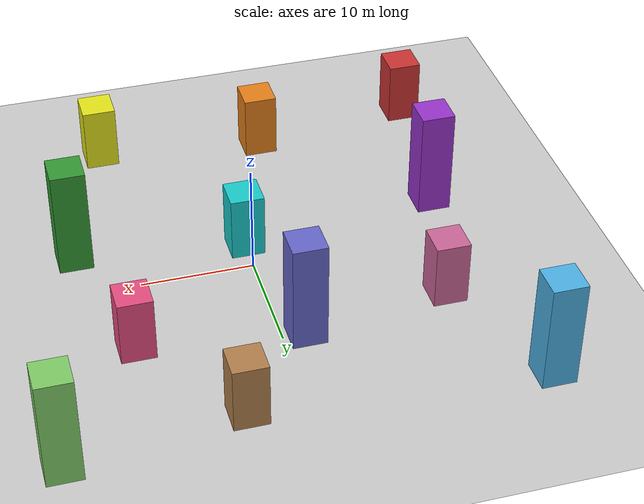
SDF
<?xml version="1.0"?>
<sdf version="1.6">
  <world name="curriculum_stage2_obstacles">

    <physics type="ode">
      <ode>
        <solver>
          <type>quick</type>
          <iters>50</iters>
          <sor>1.3</sor>
        </solver>
        <constraints>
          <cfm>0.0</cfm>
          <erp>0.2</erp>
          <contact_max_correcting_vel>100</contact_max_correcting_vel>
          <contact_surface_layer>0.001</contact_surface_layer>
        </constraints>
      </ode>
      <real_time_update_rate>250</real_time_update_rate>
      <max_step_size>0.004</max_step_size>
      <!-- Light wind for stability training -->
      <wind>
        <linear_velocity>0.5 0.3 0</linear_velocity>
      </wind>
    </physics>

    <!-- Enable wind globally -->
    <wind>
      <linear_velocity>0.5 0.3 0</linear_velocity>
    </wind>

    <light name="sun" type="directional">
      <cast_shadows>false</cast_shadows>
      <pose>0 0 50 0 0 0</pose>
      <diffuse>0.8 0.8 0.8 1</diffuse>
      <specular>0.1 0.1 0.1 1</specular>
      <attenuation>
        <range>120</range>
        <constant>0.9</constant>
        <linear>0.01</linear>
        <quadratic>0.001</quadratic>
      </attenuation>
      <direction>-0.5 0.1 -0.9</direction>
    </light>

    <scene>
      <ambient>0.6 0.6 0.6 1</ambient>
      <background>0.75 0.8 0.85 1</background>
      <shadows>false</shadows>
      <grid>false</grid>
      <origin_visual>false</origin_visual>
    </scene>

    <!-- Ground plane (Standard) -->
    <include>
      <uri>model://ground_plane</uri>
    </include>

    <!-- NO BOUNDARY WALLS - OPEN WORLD -->

    <!-- Row 1 (South): y = -20 -->
    <model name="obstacle_1">
      <static>true</static>
      <pose>-20 -20 3 0 0 0</pose>
      <link name="link">
        <collision name="collision"><geometry><box><size>3 3 6</size></box></geometry></collision>
        <visual name="visual">
          <geometry><box><size>3 3 6</size></box></geometry>
          <material>
            <ambient>0.8 0.2 0.2 1</ambient>
            <diffuse>0.8 0.2 0.2 1</diffuse>
          </material>
        </visual>
      </link>
    </model>

    <model name="obstacle_2">
      <static>true</static>
      <pose>-5 -18 3 0 0 0</pose>
      <link name="link">
        <collision name="collision"><geometry><box><size>3 3 6</size></box></geometry></collision>
        <visual name="visual">
          <geometry><box><size>3 3 6</size></box></geometry>
          <material>
            <ambient>0.9 0.5 0.1 1</ambient>
            <diffuse>0.9 0.5 0.1 1</diffuse>
          </material>
        </visual>
      </link>
    </model>

    <model name="obstacle_3">
      <static>true</static>
      <pose>10 -20 3 0 0 0</pose>
      <link name="link">
        <collision name="collision"><geometry><box><size>3 3 6</size></box></geometry></collision>
        <visual name="visual">
          <geometry><box><size>3 3 6</size></box></geometry>
          <material>
            <ambient>0.9 0.9 0.1 1</ambient>
            <diffuse>0.9 0.9 0.1 1</diffuse>
          </material>
        </visual>
      </link>
    </model>

    <!-- Row 2 (Middle-South): y = -5 -->
    <model name="obstacle_4">
      <static>true</static>
      <pose>-18 -5 5 0 0 0</pose>
      <link name="link">
        <collision name="collision"><geometry><box><size>3 3 10</size></box></geometry></collision>
        <visual name="visual">
          <geometry><box><size>3 3 10</size></box></geometry>
          <material>
            <ambient>0.6 0.2 0.8 1</ambient>
            <diffuse>0.6 0.2 0.8 1</diffuse>
          </material>
        </visual>
      </link>
    </model>

    <model name="obstacle_5">
      <static>true</static>
      <pose>0 -3 3 0 0 0</pose>
      <link name="link">
        <collision name="collision"><geometry><box><size>3 3 6</size></box></geometry></collision>
        <visual name="visual">
          <geometry><box><size>3 3 6</size></box></geometry>
          <material>
            <ambient>0.1 0.8 0.8 1</ambient>
            <diffuse>0.1 0.8 0.8 1</diffuse>
          </material>
        </visual>
      </link>
    </model>

    <model name="obstacle_6">
      <static>true</static>
      <pose>15 -5 5 0 0 0</pose>
      <link name="link">
        <collision name="collision"><geometry><box><size>3 3 10</size></box></geometry></collision>
        <visual name="visual">
          <geometry><box><size>3 3 10</size></box></geometry>
          <material>
            <ambient>0.2 0.6 0.2 1</ambient>
            <diffuse>0.2 0.6 0.2 1</diffuse>
          </material>
        </visual>
      </link>
    </model>

    <!-- Row 3 (Middle-North): y = 8 -->
    <model name="obstacle_7">
      <static>true</static>
      <pose>-15 8 3 0 0 0</pose>
      <link name="link">
        <collision name="collision"><geometry><box><size>3 3 6</size></box></geometry></collision>
        <visual name="visual">
          <geometry><box><size>3 3 6</size></box></geometry>
          <material>
            <ambient>0.8 0.4 0.6 1</ambient>
            <diffuse>0.8 0.4 0.6 1</diffuse>
          </material>
        </visual>
      </link>
    </model>

    <model name="obstacle_8">
      <static>true</static>
      <pose>-2 10 5 0 0 0</pose>
      <link name="link">
        <collision name="collision"><geometry><box><size>3 3 10</size></box></geometry></collision>
        <visual name="visual">
          <geometry><box><size>3 3 10</size></box></geometry>
          <material>
            <ambient>0.4 0.4 0.8 1</ambient>
            <diffuse>0.4 0.4 0.8 1</diffuse>
          </material>
        </visual>
      </link>
    </model>

    <model name="obstacle_9">
      <static>true</static>
      <pose>12 8 3 0 0 0</pose>
      <link name="link">
        <collision name="collision"><geometry><box><size>3 3 6</size></box></geometry></collision>
        <visual name="visual">
          <geometry><box><size>3 3 6</size></box></geometry>
          <material>
            <ambient>0.9 0.3 0.5 1</ambient>
            <diffuse>0.9 0.3 0.5 1</diffuse>
          </material>
        </visual>
      </link>
    </model>

    <!-- Row 4 (North): y = 20 -->
    <model name="obstacle_10">
      <static>true</static>
      <pose>-20 20 5 0 0 0</pose>
      <link name="link">
        <collision name="collision"><geometry><box><size>3 3 10</size></box></geometry></collision>
        <visual name="visual">
          <geometry><box><size>3 3 10</size></box></geometry>
          <material>
            <ambient>0.3 0.7 0.9 1</ambient>
            <diffuse>0.3 0.7 0.9 1</diffuse>
          </material>
        </visual>
      </link>
    </model>

    <model name="obstacle_11">
      <static>true</static>
      <pose>5 18 3 0 0 0</pose>
      <link name="link">
        <collision name="collision"><geometry><box><size>3 3 6</size></box></geometry></collision>
        <visual name="visual">
          <geometry><box><size>3 3 6</size></box></geometry>
          <material>
            <ambient>0.7 0.5 0.3 1</ambient>
            <diffuse>0.7 0.5 0.3 1</diffuse>
          </material>
        </visual>
      </link>
    </model>

    <model name="obstacle_12">
      <static>true</static>
      <pose>20 20 5 0 0 0</pose>
      <link name="link">
        <collision name="collision"><geometry><box><size>3 3 10</size></box></geometry></collision>
        <visual name="visual">
          <geometry><box><size>3 3 10</size></box></geometry>
          <material>
            <ambient>0.5 0.8 0.4 1</ambient>
            <diffuse>0.5 0.8 0.4 1</diffuse>
          </material>
        </visual>
      </link>
    </model>

    <gui fullscreen="0">
      <camera name="user_camera">
        <pose>-35 -35 25 0 0.5 0.8</pose>
        <view_controller>orbit</view_controller>
      </camera>
    </gui>

  </world>
</sdf>
